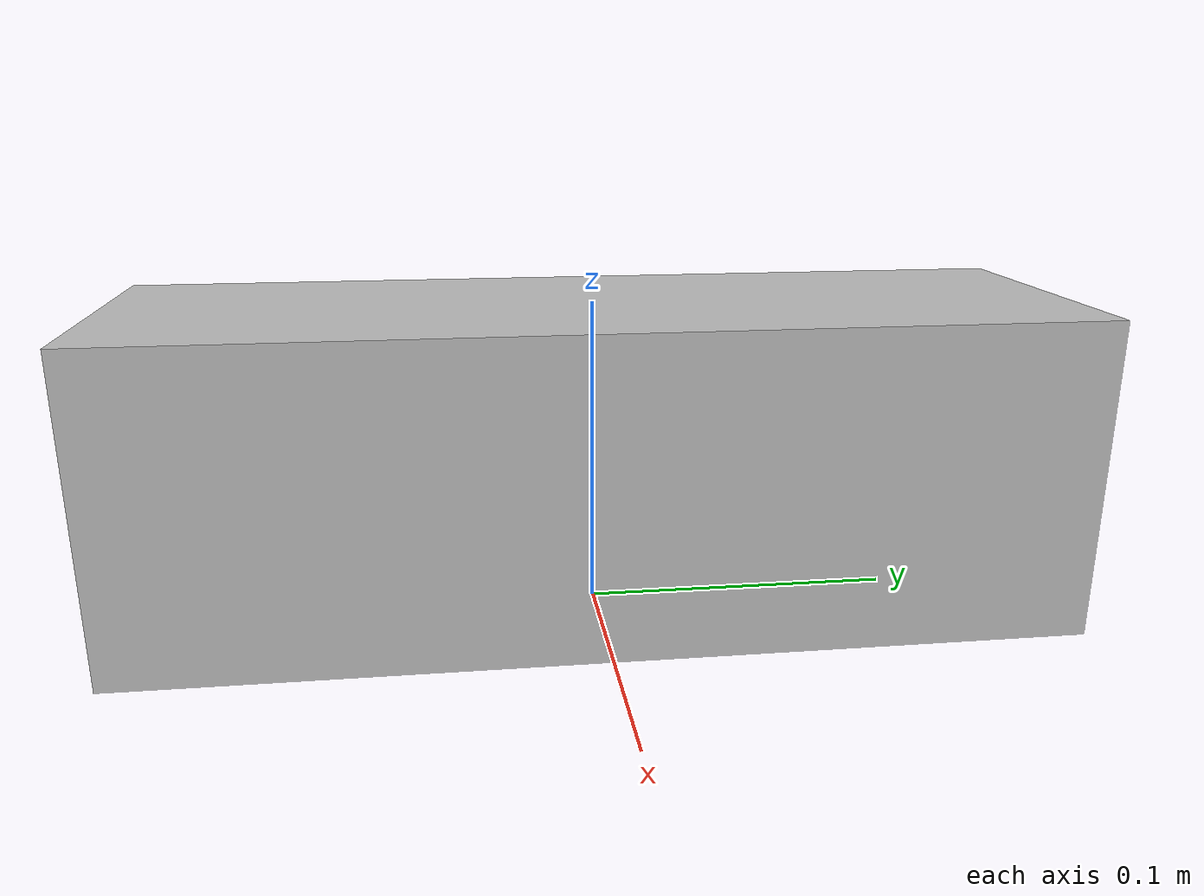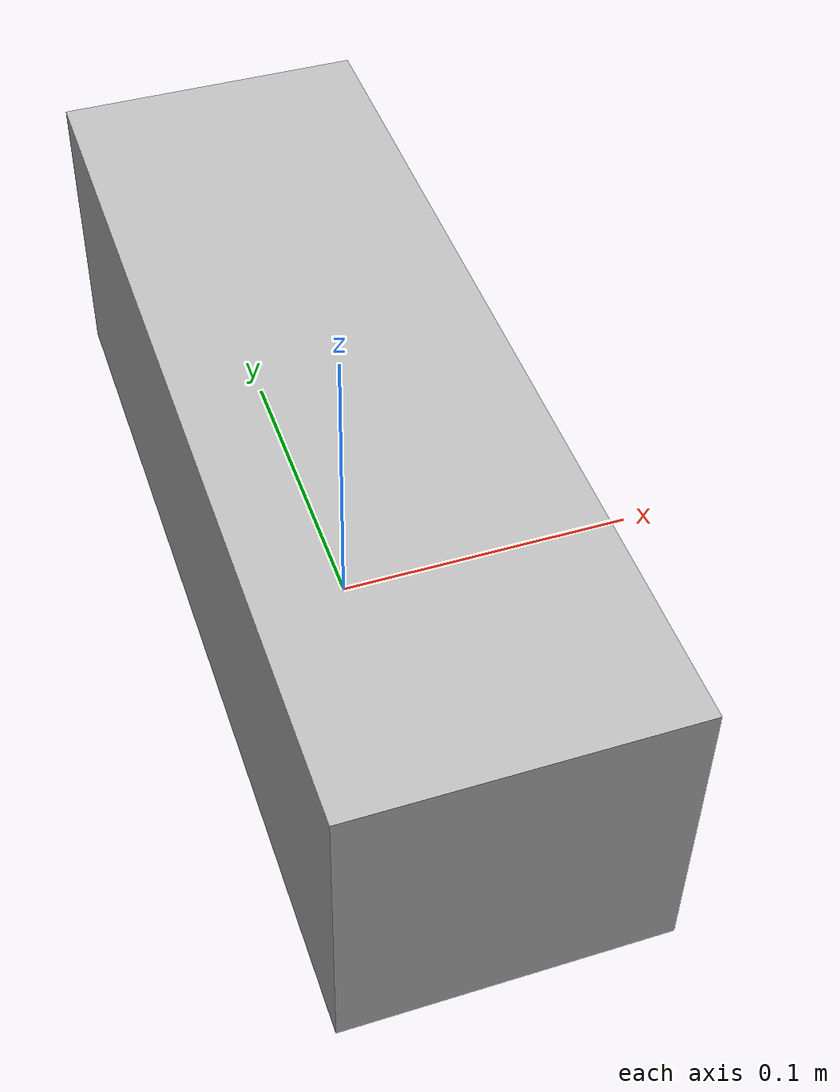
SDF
<?xml version="1.0" ?>
<sdf version="1.6">
  <model name="ros_depth_camera">
    <link name="link">
      <pose>0 0 0.05 0 0 0</pose>
      <inertial>
        <mass>0.1</mass>
        <inertia>
          <ixx>0.000166667</ixx>
          <iyy>0.000166667</iyy>
          <izz>0.000166667</izz>
        </inertia>
      </inertial>
      <collision name="collision">
        <geometry>
          <box>
            <size>0.1 0.3 0.1</size>
          </box>
        </geometry>
      </collision>
      <visual name="visual">
        <geometry>
          <box>
            <size>0.1 0.3 0.1</size>
          </box>
        </geometry>
      </visual>
      <sensor name="camera" type="depth">
        <camera>
          <horizontal_fov>1.047</horizontal_fov>
          <image>
            <width>320</width>
            <height>240</height>
          </image>
          <clip>
            <near>0.1</near>
            <far>100</far>
          </clip>
        </camera>
	<plugin name="camera_plugin" filename="libgazebo_ros_openni_kinect.so">
	  <baseline>0.2</baseline>
	  <alwaysOn>true</alwaysOn>
	  <updateRate>0.0</updateRate>
	  <cameraName>camera</cameraName>
	  <imageTopicName>/camera/depth/image_raw</imageTopicName>
	  <cameraInfoTopicName>/camera/depth/camera_info</cameraInfoTopicName>
	  <depthImageTopicName>/camera/depth/image_raw</depthImageTopicName>
	  <depthImageInfoTopicName>/camera/depth/camera_info</depthImageInfoTopicName>
	  <pointCloudTopicName>/camera/depth/points</pointCloudTopicName>
	  <frameName>camera_link</frameName>
	  <pointCloudCutoff>0.05</pointCloudCutoff>
	  <distortionK1>0</distortionK1>
	  <distortionK2>0</distortionK2>
	  <distortionK3>0</distortionK3>
	  <distortionT1>0</distortionT1>
	  <distortionT2>0</distortionT2>
	  <CxPrime>0</CxPrime>
	  <Cx>0</Cx>
	  <Cy>0</Cy>
	  <focalLength>0</focalLength>
	  <hackBaseline>0</hackBaseline>
	  </plugin>

        <always_on>1</always_on>
        <update_rate>30</update_rate>
        <visualize>true</visualize>
      </sensor>
    </link>
  </model>
</sdf>
